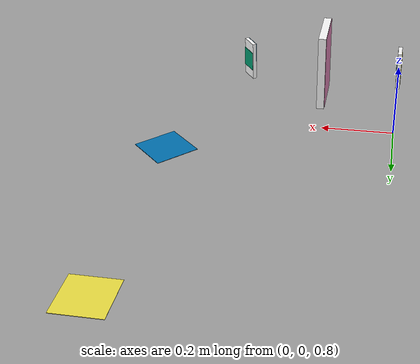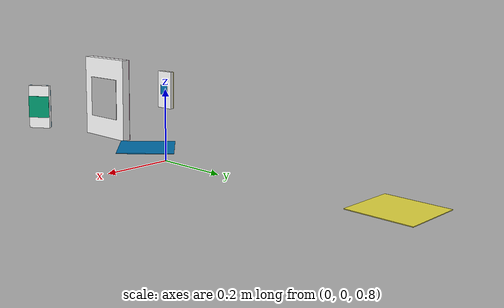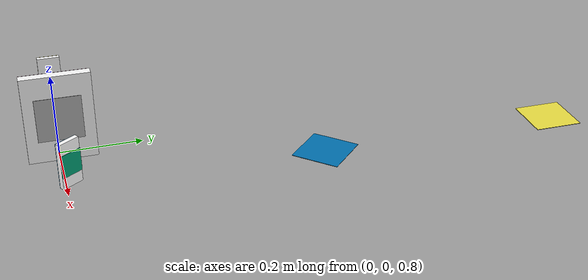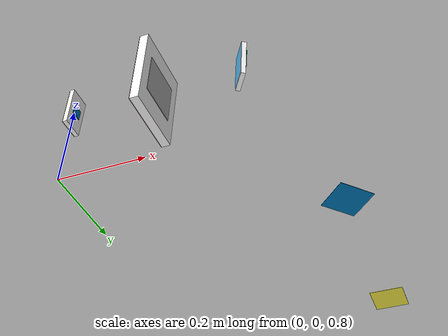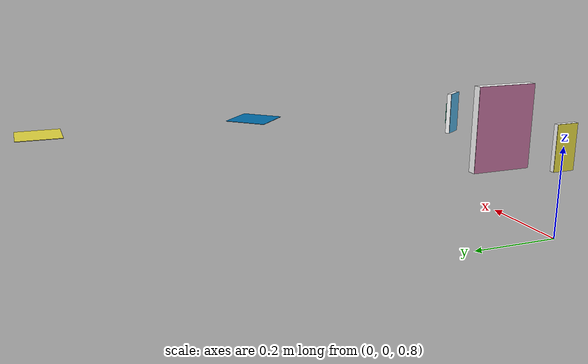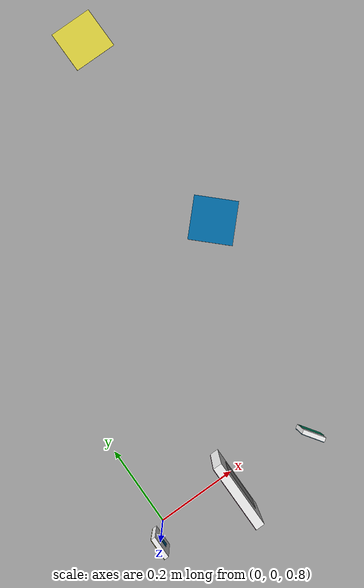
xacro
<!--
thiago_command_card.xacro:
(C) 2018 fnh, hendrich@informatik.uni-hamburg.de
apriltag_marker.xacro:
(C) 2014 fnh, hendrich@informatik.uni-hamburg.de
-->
<?xml version="1.0" ?>
<robot xmlns:sensor="http://playerstage.sourceforge.net/gazebo/xmlschema/#sensor"
       xmlns:controller="http://playerstage.sourceforge.net/gazebo/xmlschema/#controller"
       xmlns:interface="http://playerstage.sourceforge.net/gazebo/xmlschema/#interface"
       xmlns:xacro="http://www.ros.org/wiki/xacro"
       name="apriltag_demo">

  <xacro:include filename="$(find tams_apriltags)/urdf/thiago_command_card.xacro" />
  <xacro:include filename="$(find tams_apriltags)/urdf/apriltag_marker.xacro" />

  <link name="world" />
  <link name="thiago/world" />

  <joint name="hugo" type="fixed">
    <parent link="world" />
    <child  link="thiago/world" />
  </joint>

  <xacro:thiago_command_card namespace="" name="thiago_reset_card" texture="reset-logo.png"
                             gazeboMaterial="thiago/Reset"
                             family="36h11" tagID="201"
                             dx="0.1" dy="0.05" dz="0.01" tagSize="0.025" />
  <joint name="thiago_reset_card_joint" type="fixed">
    <parent link="world" />
    <child  link="thiago_reset_card" />
    <origin xyz="0 0 1" rpy="0 1.571 0" />
  </joint>

  <xacro:thiago_command_card namespace="" name="thiago_bacardi_card" texture="bacardi-logo.png"
                             gazeboMaterial="thiago/Bacardi"
                             family="36h11" tagID="202"
                             dx="0.2" dy="0.15" dz="0.02" tagSize="0.1" />
  <joint name="thiago_bacardi_card_joint" type="fixed">
    <parent link="world" />
    <child  link="thiago_bacardi_card" />
    <origin xyz="0.2 0 1" rpy="0 1.571 0" />
  </joint>

  <xacro:thiago_command_card namespace="" name="thiago_coke_card" texture="coke-logo.png"
                             gazeboMaterial="thiago/Coke"
                             family="36h11" tagID="203"
                             dx="0.1" dy="0.05" dz="0.01" tagSize="0.05" />
  <joint name="thiago_coke_card_joint" type="fixed">
    <parent link="world" />
    <child  link="thiago_coke_card" />
    <origin xyz="0.4 0 1" rpy="0 1.571 0.6" />
  </joint>

  <xacro:apriltag_marker namespace="" name="apriltag2" parent="world"
                         family="36h11" ID="2" size="0.1">
    <origin xyz="0.5 1 1" rpy=" 0 0 0" />
  </xacro:apriltag_marker>

  <xacro:apriltag_marker namespace="" name="apriltag3" parent="world" family="36h11" ID="3" size="0.1">
    <origin xyz="0.5 0.5 1" rpy=" 0 0 0.8" />
  </xacro:apriltag_marker>

</robot>

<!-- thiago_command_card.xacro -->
<robot xmlns:sensor="http://playerstage.sourceforge.net/gazebo/xmlschema/#sensor"
       xmlns:controller="http://playerstage.sourceforge.net/gazebo/xmlschema/#controller"
       xmlns:interface="http://playerstage.sourceforge.net/gazebo/xmlschema/#interface"
       xmlns:xacro="http://www.ros.org/wiki/xacro"
       name="thiago_card">

  <xacro:include filename="$(find tams_apriltags)/urdf/apriltag_marker.xacro" />

  <xacro:macro name="thiago_command_card" params="namespace name texture gazeboMaterial family tagID tagSize dx dy dz" >
    <!-- main body with collision but without visual -->
    <link name="${namespace}${name}">
      <inertial>
        <mass value="0.01" />
        <origin xyz="0 0 0" rpy="0 0 0" />
        <inertia ixx="0.01" ixy="0" ixz="0" iyy="0.01" iyz="0" izz="0.01" />
      </inertial>
      <collision>
        <origin xyz="0 0 0" rpy="0 0 0" />
        <geometry>
          <box size="${dx} ${dy} ${dz}" />
        </geometry>
      </collision>
      <visual>
        <origin xyz="0 0 0" rpy="0 0 0" />
        <geometry>
          <box size="${dx} ${dy} ${dz}" />
        </geometry>
        <material name="thiago_command_card_white/${name}">
          <color rgba="1.0 1.0 1.0 1.0"/>
        </material>
      </visual>
    </link>
    <gazebo reference="${namespace}${name}">
      <!-- material/texture definition for Gazebo -->
      <turnGravityOff>false</turnGravityOff>
      <selfCollide>false</selfCollide>
      <mu1>0</mu1>
      <mu2>0</mu2>
      <kp>1000000.0</kp>
      <kd>1.0</kd>
    </gazebo>

    <!-- texture on the front of the command card -->
    <link name="${namespace}${name}_logo_link">
      <visual>
        <origin xyz="0 0 0" rpy="0 0 0" />
        <geometry>
          <box size="${dx} ${dy} ${0.0001}" />
        </geometry>
        <!-- material definition for rviz -->
        <material name="thiago_command_card_texture/${name}/texture" >
          <texture filename="file://$(find tams_apriltags)/Media/materials/textures/${texture}" />
        </material>
      </visual>
    </link>
    <gazebo reference="${namespace}${name}_logo_link">
      <!-- material/texture definition for Gazebo -->
      <material>${gazeboMaterial}</material>
      <turnGravityOff>false</turnGravityOff>
      <selfCollide>false</selfCollide>
      <mu1>0</mu1>
      <mu2>0</mu2>
      <kp>1000000.0</kp>
      <kd>1.0</kd>
    </gazebo>

    <!-- the apriltag on the back of the command card -->
    <link name="${namespace}${name}_atag_link">
      <visual>
        <origin xyz="0 0 0" rpy="0 0 0" />
        <geometry>
          <box size="${tagSize} ${tagSize} ${0.001}" />
        </geometry>
        <!-- material definition for rviz -->
        <material name="apriltag_${family}/tag${family}_${tagID}" >
          <!-- we generate 5-digit numbers in the filenames; for 36h11 this means we need 2 leading zeros -->
          <texture filename="file://$(find tams_apriltags)/Media/materials/textures/rviz/${family}/${tagID}.png" />
        </material>
      </visual>
    </link>
    <gazebo reference="${namespace}${name}_atag_link">
      <!-- material/texture definition for Gazebo -->
      <material>apriltag_${family}/tag${family}_${tagID}</material>
      <turnGravityOff>false</turnGravityOff>
      <selfCollide>false</selfCollide>
      <mu1>0</mu1>
      <mu2>0</mu2>
      <kp>1000000.0</kp>
      <kd>1.0</kd>
    </gazebo>

    <joint name="${namespace}${name}_logo_joint" type="fixed">
      <parent link="${namespace}${name}" />
      <child link="${namespace}${name}_logo_link" />
      <origin xyz="0 0 ${-dz/2-0.001}" rpy="0 0 0" />
    </joint>

    <joint name="${namespace}${name}_atag_joint" type="fixed">
      <parent link="${namespace}${name}" />
      <child link="${namespace}${name}_atag_link" />
      <origin xyz="0 0 ${dz/2+0.001}" rpy="0 0 0" />
    </joint>
  </xacro:macro>

</robot>

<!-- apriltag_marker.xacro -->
<robot xmlns:sensor="http://playerstage.sourceforge.net/gazebo/xmlschema/#sensor"
       xmlns:controller="http://playerstage.sourceforge.net/gazebo/xmlschema/#controller"
       xmlns:interface="http://playerstage.sourceforge.net/gazebo/xmlschema/#interface"
       xmlns:xacro="http://www.ros.org/wiki/xacro"
       name="apriltag_marker">

  <xacro:macro name="apriltag_marker" params="namespace name parent family ID size *origin" >
    <link name="${namespace}${name}">
      <inertial>
        <mass value="0.001" />
        <origin xyz="0 0 0" rpy="0 0 0" />
        <inertia ixx="0.01" ixy="0" ixz="0" iyy="0.01" iyz="0" izz="0.01" />
      </inertial>
      <collision>
        <origin xyz="0 0 0" rpy="0 0 1.571" />
        <geometry>
          <box size="${size} ${size} 0.001" />
        </geometry>
      </collision>
      <visual>
        <origin xyz="0 0 0" rpy="0 0 1.571" />
        <geometry>
          <box size="${size} ${size} 0.001" />
        </geometry>

        <material name="apriltag_${family}/tag${family}_${ID}" >
        <!-- we generate 5-digit numbers in the filenames; for 36h11 this means we need 2 leading zeros -->
	        <texture filename="file://$(find tams_apriltags)/Media/materials/textures/rviz/${family}/${ID}.png" />
        </material>
      </visual>
    </link>
    <!-- we use Gazebo material to put the texture onto the marker. Note mu1=mu2=0 for no friction. -->
    <gazebo reference="${namespace}${name}">
      <material>apriltag_${family}/tag${family}_${ID}</material>
      <turnGravityOff>false</turnGravityOff>
      <selfCollide>false</selfCollide>
      <mu1>0</mu1>
      <mu2>0</mu2>
      <kp>1000000.0</kp>
      <kd>1.0</kd>
    </gazebo>
    <joint name="${namespace}${name}_joint" type="fixed">
      <insert_block name="origin" />
      <parent link="${namespace}${parent}" />
      <child link="${namespace}${name}" />
    </joint>
  </xacro:macro>

</robot>
